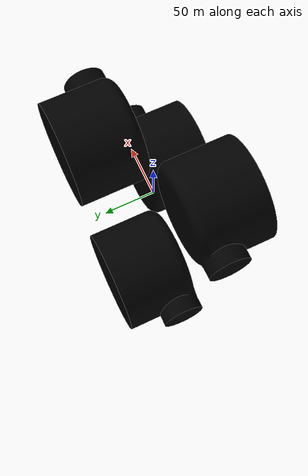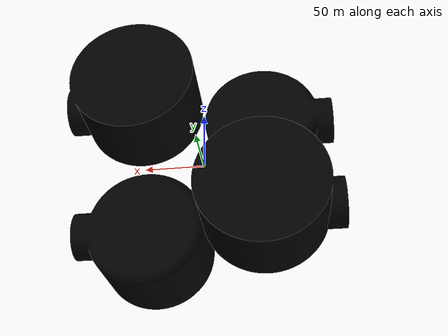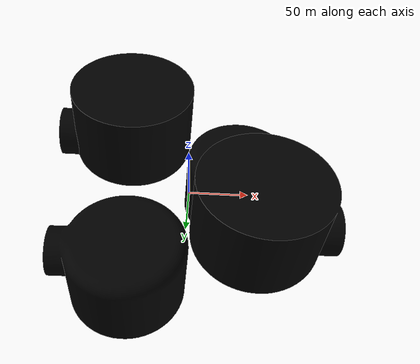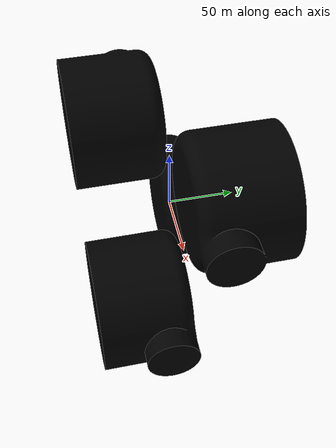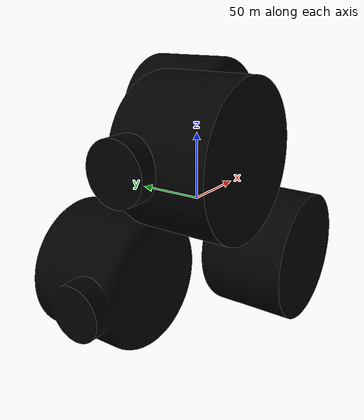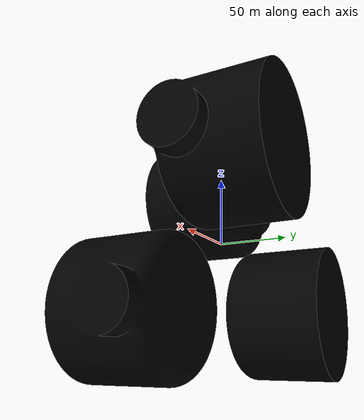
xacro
<?xml version="1.0"?>
<robot name="orthrus"
  xmlns:xacro="http://ros.org/wiki/xacro">

  <xacro:property name="meshes_folder" value="file:///$(find orthrus_interfaces)/models/orthrus/meshes" />
  <xacro:property name="orthrus_config_path" value="file:///$(find orthrus_gazebo)/config/orthrus.yaml" />

  <xacro:include filename="orthrus_base.xacro"/>

  <xacro:HAA prefix="LF"/>
  <xacro:HFE prefix="LF"/>
  <xacro:KFE prefix="LF"/>
  <xacro:FOOT prefix="LF"/>

  <xacro:HAA prefix="LH"/>
  <xacro:HFE prefix="LH"/>
  <xacro:KFE prefix="LH"/>
  <xacro:FOOT prefix="LH"/>

  <xacro:HAA prefix="RF"/>
  <xacro:HFE prefix="RF"/>
  <xacro:KFE prefix="RF"/>
  <xacro:FOOT prefix="RF"/>

  <xacro:HAA prefix="RH"/>
  <xacro:HFE prefix="RH"/>
  <xacro:KFE prefix="RH"/>
  <xacro:FOOT prefix="RH"/>

  <gazebo reference="base">
    <sensor name="imu_sensor" type="imu">
      <always_on>1</always_on>
      <update_rate>1000</update_rate>
    </sensor>
  </gazebo>

  <ros2_control name="GazeboSystem" type="system">
    <hardware>
      <plugin>gazebo_ros2_control/GazeboSystem</plugin>
    </hardware>

    <xacro:ros2_HAA_joint prefix="RF"/>
    <xacro:ros2_HFE_joint prefix="RF"/>
    <xacro:ros2_KFE_joint prefix="RF"/>
    <xacro:ros2_FOOT_joint prefix="RF"/>

    <xacro:ros2_HAA_joint prefix="LF"/>
    <xacro:ros2_HFE_joint prefix="LF"/>
    <xacro:ros2_KFE_joint prefix="LF"/>
    <xacro:ros2_FOOT_joint prefix="LF"/>

    <xacro:ros2_HAA_joint prefix="RH"/>
    <xacro:ros2_HFE_joint prefix="RH"/>
    <xacro:ros2_KFE_joint prefix="RH"/>
    <xacro:ros2_FOOT_joint prefix="RH"/>

    <xacro:ros2_HAA_joint prefix="LH"/>
    <xacro:ros2_HFE_joint prefix="LH"/>
    <xacro:ros2_KFE_joint prefix="LH"/>
    <xacro:ros2_FOOT_joint prefix="LH"/>

    <sensor name="imu_sensor">
      <state_interface name="orientation.x"/>
      <state_interface name="orientation.y"/>
      <state_interface name="orientation.z"/>
      <state_interface name="orientation.w"/>
      <state_interface name="angular_velocity.x"/>
      <state_interface name="angular_velocity.y"/>
      <state_interface name="angular_velocity.z"/>
      <state_interface name="linear_acceleration.x"/>
      <state_interface name="linear_acceleration.y"/>
      <state_interface name="linear_acceleration.z"/>
    </sensor>

  </ros2_control>
  <gazebo>
    <plugin filename="libgazebo_ros2_control.so" name="gazebo_ros2_control">
      <parameters>$(find orthrus_gazebo)/config/orthrus.yaml</parameters>
    </plugin>
  </gazebo>
</robot>

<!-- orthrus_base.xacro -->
<robot name="orthrus_base"
  xmlns:xacro="http://ros.org/wiki/xacro">

  <material name="blue">
    <color rgba="0 0 0.8 1"/>
  </material>

  <material name="black">
    <color rgba="0 0 0 1"/>
  </material>

  <material name="white">
    <color rgba="1 1 1 1"/>
  </material>

  <link name="base">
    <visual>
      <origin xyz="-0.1385 -0.10 -0.05" rpy="${pi/2} 0 ${pi/2}" />
      <geometry>
        <mesh filename="${meshes_folder}/body.STL"/>
      </geometry>
      <material name="blue"/>
    </visual>
    <collision>
      <origin xyz="-0.1385 -0.10 -0.05" rpy="${pi/2} 0 ${pi/2}" />
      <geometry>
        <mesh filename="${meshes_folder}/body.STL"/>
      </geometry>
    </collision>
    <inertial>
      <origin xyz="-0.010977 0.000003 -0.000477" rpy="0 0 0" />
      <mass value="4.429"/>
      <inertia ixx="1.4923275" ixy="-0.0034837" ixz=" -0.0020438" iyy="5.0690680" iyz="0.0209222" izz="5.7629196" />
    </inertial>
  </link>

  <xacro:macro name="HAA" params="prefix">
    <link name="${prefix}_HAA_link">
      <visual>
        <origin xyz="-0.02 -0.05 -0.05" rpy="0 0 0" />
        <geometry>
          <mesh filename="${meshes_folder}/hip.STL"/>
        </geometry>
        <material name="black"/>
      </visual>
      <collision>
        <origin xyz="-0.02 -0.05 -0.05" rpy="0 0 0" />
        <geometry>
          <mesh filename="${meshes_folder}/hip.STL"/>
        </geometry>
      </collision>
      <inertial>
        <origin xyz="0.01493 0.00159 0.00" rpy="0 0 0" />
        <mass value="0.7"/>
        <inertia ixx="-0.084" ixy="0.0" ixz="0.996" iyy="-1.0" iyz="0.0" izz="0.084" />
      </inertial>
    </link>

    <joint name="${prefix}_HAA" type="revolute">
      <axis xyz="0 0 1"/>
      <parent link="base"/>
      <child link="${prefix}_HAA_link"/>
      <dynamics damping="0.4" friction="0.3"/>
      <limit effort="35.0" lower="-${pi/2}" upper="${pi/2}" velocity="${pi}"/>
      <xacro:if value="${prefix == 'LF'}">
        <origin xyz="0.20 0.05 0" rpy="${pi/2} ${pi} ${-pi/2}" />
      </xacro:if>
      <xacro:if value="${prefix == 'LH'}">
        <origin xyz="-0.20 0.05 0" rpy="-${pi/2} ${pi} ${-pi/2}" />
      </xacro:if>
      <xacro:if value="${prefix == 'RH'}">
        <origin xyz="-0.20 -0.05 0" rpy="${pi/2} ${pi} ${pi/2}" />
      </xacro:if>
      <xacro:if value="${prefix == 'RF'}">
        <origin xyz="0.20 -0.05 0" rpy="-${pi/2} ${pi} ${pi/2}" />
      </xacro:if>
    </joint>
  </xacro:macro>

  <xacro:macro name="HFE" params="prefix">
    <link name="${prefix}_HFE_link">
      <visual>
        <origin xyz="0 -0.2 -0.05" rpy="0 0 0" />
        <geometry>
          <mesh filename="${meshes_folder}/leg1.STL"/>
        </geometry>
        <material name="black"/>
      </visual>
      <collision>
        <origin xyz="0 -0.2 -0.05" rpy="0 0 0" />
        <geometry>
          <mesh filename="${meshes_folder}/leg1.STL"/>
        </geometry>
      </collision>
      <inertial>
        <origin xyz="0.02764 -0.02513 0.00" rpy="0 0 0" />
        <mass value="1"/>
        <inertia ixx="0.4329464" ixy="-0.0830239" ixz=" -0.0000001" iyy="0.1503071" iyz="0.0000001" izz="0.4817994" />
      </inertial>
    </link>

    <joint name="${prefix}_HFE" type="revolute">
      <axis xyz="1 0 0"/>
      <parent link="${prefix}_HAA_link"/>
      <child link="${prefix}_HFE_link"/>
      <dynamics damping="0.4" friction="0.3"/>
      <limit effort="35.0" lower="-${pi*2/3}" upper="${pi*2/3}" velocity="${pi}"/>
      <xacro:if value="${prefix == 'LF'}">
        <origin xyz="0.05 0 0" rpy="-${pi/2} 0 0" />
      </xacro:if>
      <xacro:if value="${prefix == 'LH'}">
        <origin xyz="0.05 0 0" rpy="${pi/2} 0 0" />
      </xacro:if>
      <xacro:if value="${prefix == 'RH'}">
        <origin xyz="0.05 0 0" rpy="${pi/2} 0 0" />
      </xacro:if>
      <xacro:if value="${prefix == 'RF'}">
        <origin xyz="0.05 0 0" rpy="-${pi/2} 0 0" />
      </xacro:if>
    </joint>
  </xacro:macro>

  <xacro:macro name="KFE" params="prefix">
    <link name="${prefix}_KFE_link">
      <visual>
        <origin xyz="-0.025 -0.025 -0.225" rpy="0 0 0" />
        <geometry>
          <mesh filename="${meshes_folder}/leg2.STL"/>
        </geometry>
        <material name="black"/>
      </visual>
      <collision>
        <origin xyz="-0.025 -0.025 -0.225" rpy="0 0 0" />
        <geometry>
          <mesh filename="${meshes_folder}/leg2.STL"/>
        </geometry>
      </collision>
      <inertial>
        <origin xyz="0.00 0.00 -0.12564" rpy="0 0 0" />
        <mass value="0.2"/>
        <inertia ixx="0.4201680" ixy="0" ixz="0" iyy="0.4196489" iyz="0" izz="0.0031965" />
      </inertial>
    </link>

    <joint name="${prefix}_KFE" type="revolute">
      <axis xyz="1 0 0"/>
      <parent link="${prefix}_HFE_link"/>
      <child link="${prefix}_KFE_link"/>
      <dynamics damping="0.4" friction="0.3"/>

      <xacro:if value="${prefix == 'LF'}">
        <origin xyz="0.035 -0.18 0" rpy="${pi*2/3} 0 0" />
        <limit effort="35.0" lower="-${pi*1/12}" upper="${pi*2/3}" velocity="${pi}"/>
      </xacro:if>
      <xacro:if value="${prefix == 'RF'}">
        <origin xyz="0.035 -0.18 0" rpy="${pi*1/3} 0 0" />
        <limit effort="35.0" lower="-${pi*2/3}" upper="${pi*1/12}" velocity="${pi}"/>
      </xacro:if>
      <xacro:if value="${prefix == 'RH'}">
        <origin xyz="0.035 -0.18 0" rpy="${pi*1/3} 0 0" />
        <limit effort="35.0" lower="-${pi*2/3}" upper="${pi*1/12}" velocity="${pi}"/>
      </xacro:if>
      <xacro:if value="${prefix == 'LH'}">
        <origin xyz="0.035 -0.18 0" rpy="${pi*2/3} 0 0" />
        <limit effort="35.0" lower="-${pi*1/12}" upper="${pi*2/3}" velocity="${pi}"/>
      </xacro:if>

    </joint>
  </xacro:macro>

  <xacro:macro name="FOOT" params="prefix">
    <link name="${prefix}_FOOT_link">
    </link>

    <joint name="${prefix}_FOOT" type="fixed">
      <axis xyz="1 0 0"/>
      <parent link="${prefix}_KFE_link"/>
      <child link="${prefix}_FOOT_link"/>
      <origin xyz="0.0 0.0 -0.2" rpy="0 0 0" />
    </joint>
  </xacro:macro>

  <xacro:macro name="ros2_HAA_joint" params="prefix">
    <joint name="${prefix}_HAA">
      <command_interface name="effort">
        <param name="min">-35</param>
        <param name="max">35</param>
      </command_interface>
      <state_interface name="position"/>
      <state_interface name="velocity"/>
      <state_interface name="effort"/>
    </joint>
  </xacro:macro>

  <xacro:macro name="ros2_HFE_joint" params="prefix">
    <joint name="${prefix}_HFE">
      <command_interface name="effort">
        <param name="min">-35</param>
        <param name="max">35</param>
      </command_interface>
      <state_interface name="position"/>
      <state_interface name="velocity"/>
      <state_interface name="effort"/>
    </joint>
  </xacro:macro>

  <xacro:macro name="ros2_KFE_joint" params="prefix">
    <joint name="${prefix}_KFE">
      <command_interface name="effort">
        <param name="min">-35</param>
        <param name="max">35</param>
      </command_interface>
      <state_interface name="position"/>
      <state_interface name="velocity"/>
      <state_interface name="effort"/>
    </joint>
  </xacro:macro>

  <xacro:macro name="orthrus_ros2_control" params="prefix name">

    <ros2_control name="${name}" type="system">
      <xacro:if value="${prefix == 'gazebo'}">
        <hardware>
          <plugin>gazebo_ros2_control/GazeboSystem</plugin>
        </hardware>
      </xacro:if>
      <xacro:if value="${prefix == 'real'}">
        <hardware>
          <plugin>orthrus_control/OrthrusSystemHardware</plugin>
        </hardware>
      </xacro:if>

      <xacro:ros2_HAA_joint prefix="RF"/>
      <xacro:ros2_HFE_joint prefix="RF"/>
      <xacro:ros2_KFE_joint prefix="RF"/>

      <xacro:ros2_HAA_joint prefix="LF"/>
      <xacro:ros2_HFE_joint prefix="LF"/>
      <xacro:ros2_KFE_joint prefix="LF"/>

      <xacro:ros2_HAA_joint prefix="RH"/>
      <xacro:ros2_HFE_joint prefix="RH"/>
      <xacro:ros2_KFE_joint prefix="RH"/>

      <xacro:ros2_HAA_joint prefix="LH"/>
      <xacro:ros2_HFE_joint prefix="LH"/>
      <xacro:ros2_KFE_joint prefix="LH"/>

      <sensor name="imu_sensor">
        <state_interface name="orientation.x"/>
        <state_interface name="orientation.y"/>
        <state_interface name="orientation.z"/>
        <state_interface name="orientation.w"/>
        <state_interface name="angular_velocity.x"/>
        <state_interface name="angular_velocity.y"/>
        <state_interface name="angular_velocity.z"/>
        <state_interface name="linear_acceleration.x"/>
        <state_interface name="linear_acceleration.y"/>
        <state_interface name="linear_acceleration.z"/>
      </sensor>

      <xacro:if value="${prefix == 'real'}">
        <sensor name="imu_lf">
          <state_interface name="orientation.x"/>
          <state_interface name="orientation.y"/>
          <state_interface name="orientation.z"/>
          <state_interface name="orientation.w"/>
        </sensor>
        <sensor name="imu_lh">
          <state_interface name="orientation.x"/>
          <state_interface name="orientation.y"/>
          <state_interface name="orientation.z"/>
          <state_interface name="orientation.w"/>
        </sensor>
        <sensor name="imu_rf">
          <state_interface name="orientation.x"/>
          <state_interface name="orientation.y"/>
          <state_interface name="orientation.z"/>
          <state_interface name="orientation.w"/>
        </sensor>
        <sensor name="imu_rh">
          <state_interface name="orientation.x"/>
          <state_interface name="orientation.y"/>
          <state_interface name="orientation.z"/>
          <state_interface name="orientation.w"/>
        </sensor>
      </xacro:if>

      <xacro:if value="${prefix == 'real'}">
        <gpio name="flag">
          <command_interface name="enable_power"/>
          <command_interface name="calibration_position"/>
          <command_interface name="calibration_encoder"/>
          <!-- Needed to know current state of the output -->
        </gpio>
      </xacro:if>

    </ros2_control>
  </xacro:macro>

</robot>
